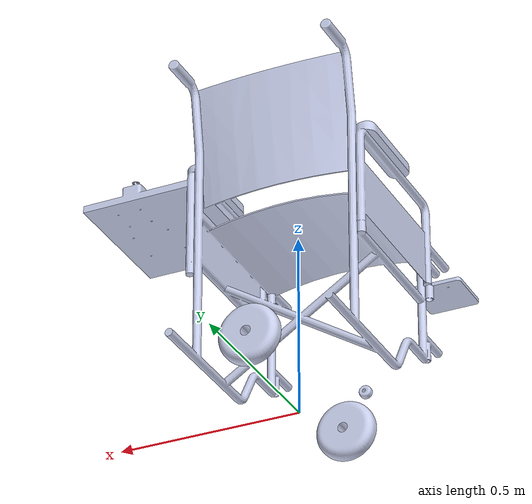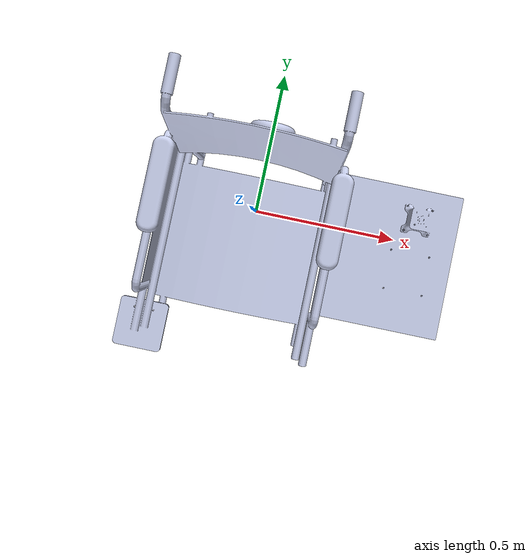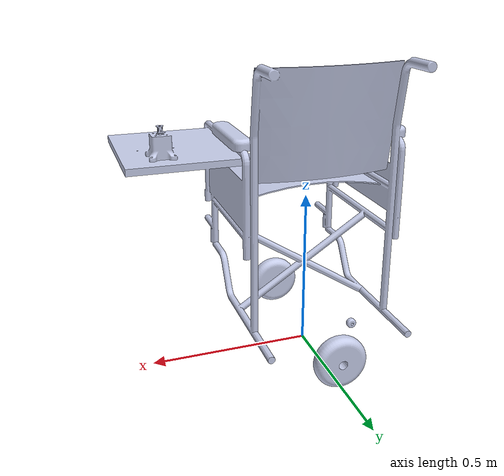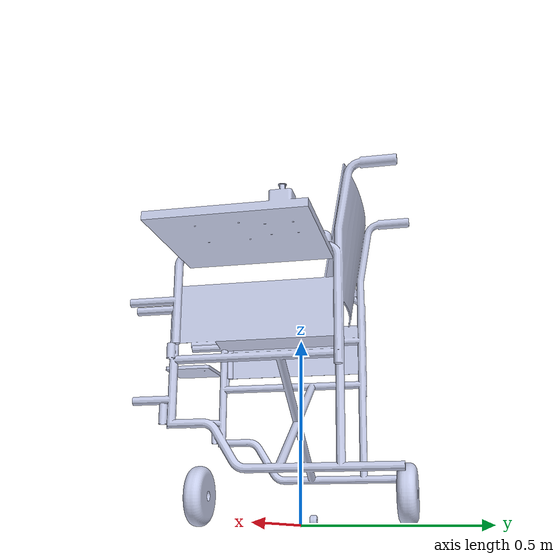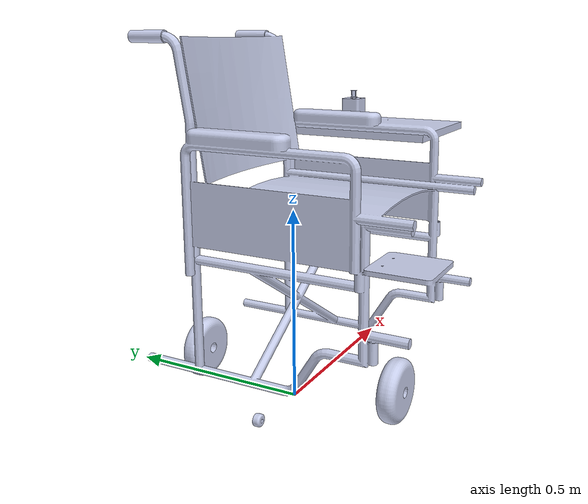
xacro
<?xml version="1.0" encoding="utf-8"?>
<robot
  name="Robot" xmlns:xacro="http://www.ros.org/wiki/xacro">
  <link
    name="base_link">
    <inertial>
      <origin
        xyz="-0.00482372846281469 -0.000196279137492443 0.120096327441034"
        rpy="0 0 0" />
      <mass
        value="29.884356679532" />
      <inertia
        ixx="0.994797476444856"
        ixy="-0.000270123877535522"
        ixz="0.0305342555958383"
        iyy="1.06315720070689"
        iyz="-0.000292359115332781"
        izz="1.79161749031822" />
    </inertial>
    <visual>
      <origin
        xyz="0 0 0"
        rpy="0 0 0" />
      <geometry>
        <mesh
          filename="package://my_robot_description/meshes/base_link.STL" />
      </geometry>
      <material
        name="">
        <color
          rgba="0.792156862745098 0.819607843137255 0.933333333333333 1" />
      </material>
    </visual>
    <collision>
      <origin
        xyz="0 0 0"
        rpy="0 0 0" />
      <geometry>
        <mesh
          filename="package://my_robot_description/meshes/base_link.STL" />
      </geometry>
    </collision>
  </link>
  <link
    name="leftwheel_Link">
    <inertial>
      <origin
        xyz="1.0842021724855E-19 -0.0250000000000001 0"
        rpy="0 0 0" />
      <mass
        value="0.904201334084009" />
      <inertia
        ixx="0.00157617026567942"
        ixy="3.09487241932516E-20"
        ixz="1.42161549186555E-36"
        iyy="0.00281216754782375"
        iyz="8.83651140684344E-37"
        izz="0.00157617026567942" />
    </inertial>
    <visual>
      <origin
        xyz="0 0 0"
        rpy="0 0 0" />
      <geometry>
        <mesh
          filename="package://my_robot_description/meshes/leftwheel_Link.STL" />
      </geometry>
      <material
        name="">
        <color
          rgba="0.792156862745098 0.819607843137255 0.933333333333333 1" />
      </material>
    </visual>
    <collision>
      <origin
        xyz="0 0 0"
        rpy="0 0 0" />
      <geometry>
        <mesh
          filename="package://my_robot_description/meshes/leftwheel_Link.STL" />
      </geometry>
    </collision>
  </link>
  <joint
    name="leftwheel"
    type="continuous">
    <origin
      xyz="-0.000130074178891328 0.307950941583285 0.0350783930876141"
      rpy="0 0 0" />
    <parent
      link="base_link" />
    <child
      link="leftwheel_Link" />
    <axis
      xyz="0 1 0" />
  </joint>
  <link
    name="rightwheel_Link">
    <inertial>
      <origin
        xyz="-4.03323208164608E-16 0.025 -6.93889390390723E-18"
        rpy="0 0 0" />
      <mass
        value="0.904201334084009" />
      <inertia
        ixx="0.00157617026567942"
        ixy="8.36117893313694E-21"
        ixz="1.42161549186555E-36"
        iyy="0.00281216754782375"
        iyz="8.83651140684344E-37"
        izz="0.00157617026567942" />
    </inertial>
    <visual>
      <origin
        xyz="0 0 0"
        rpy="0 0 0" />
      <geometry>
        <mesh
          filename="package://my_robot_description/meshes/rightwheel_Link.STL" />
      </geometry>
      <material
        name="">
        <color
          rgba="0.792156862745098 0.819607843137255 0.933333333333333 1" />
      </material>
    </visual>
    <collision>
      <origin
        xyz="0 0 0"
        rpy="0 0 0" />
      <geometry>
        <mesh
          filename="package://my_robot_description/meshes/rightwheel_Link.STL" />
      </geometry>
    </collision>
  </link>
  <joint
    name="rightwheel"
    type="continuous">
    <origin
      xyz="-0.000701363017151951 -0.307950941583284 0.0350783930876141"
      rpy="0 0 0" />
    <parent
      link="base_link" />
    <child
      link="rightwheel_Link" />
    <axis
      xyz="0 -1 0" />
  </joint>
  <link
    name="supportwheel_Link">
    <inertial>
      <origin
        xyz="-0.000150946084529785 -0.00139961578214384 -0.000123365574044413"
        rpy="0 0 0" />
      <mass
        value="0.0131459852654848" />
      <inertia
        ixx="1.25638910116563E-06"
        ixy="-1.33300952333478E-21"
        ixz="2.61285921313983E-11"
        iyy="1.72721590010522E-06"
        iyz="-2.07531498370768E-24"
        izz="1.256378485512E-06" />
    </inertial>
    <visual>
      <origin
        xyz="0 0 0"
        rpy="0 0 0" />
      <geometry>
        <mesh
          filename="package://my_robot_description/meshes/supportwheel_Link.STL" />
      </geometry>
      <material
        name="">
        <color
          rgba="0.792156862745098 0.819607843137255 0.933333333333333 1" />
      </material>
    </visual>
    <collision>
      <origin
        xyz="0 0 0"
        rpy="0 0 0" />
      <geometry>
        <mesh
          filename="package://my_robot_description/meshes/supportwheel_Link.STL" />
      </geometry>
    </collision>
  </link>
  <joint
    name="spwheel"
    type="continuous">
    <origin
      xyz="-0.17967207586264 0.00100382181363834 -0.0280371509275584"
      rpy="0 0 0" />
    <parent
      link="base_link" />
    <child
      link="supportwheel_Link" />
    <axis
      xyz="0 1 0" />
  </joint>

  <link name = "base_footprint"/>

  <joint name = "base_footprint_joint" type = "fixed">
      <parent link = "base_footprint"/>
      <child link = "base_link"/>
      <origin xyz = "0 0 0.045" rpy = "0 0 0"/>
  </joint>
</robot>
